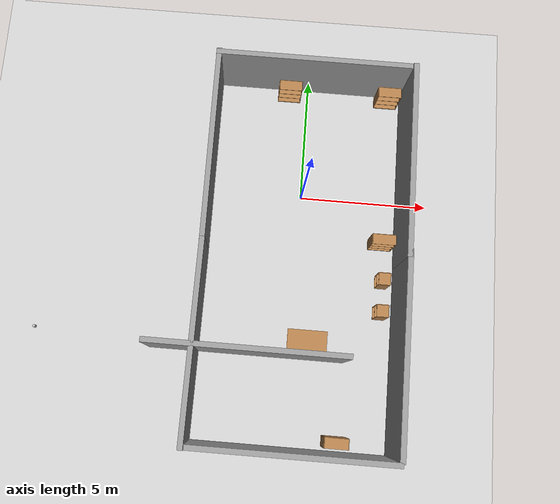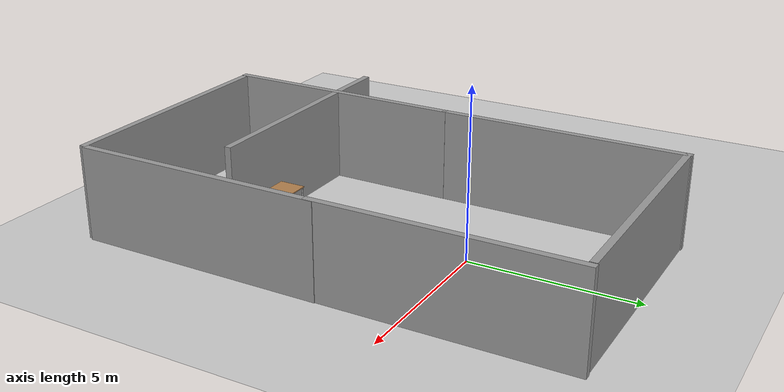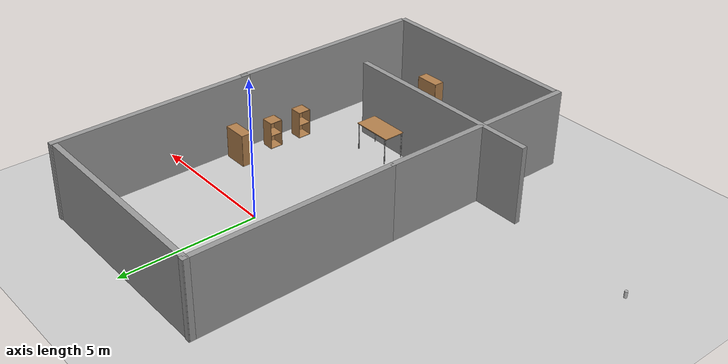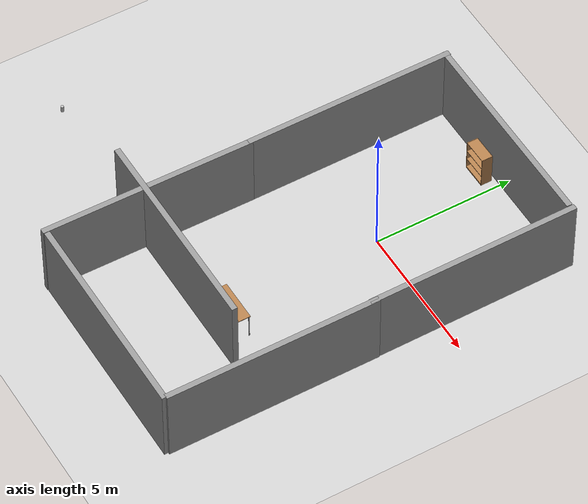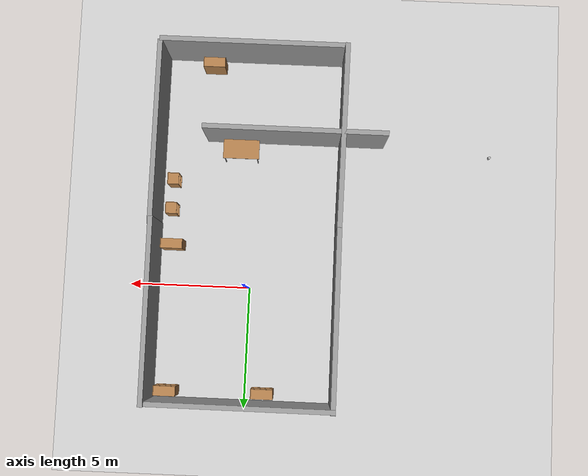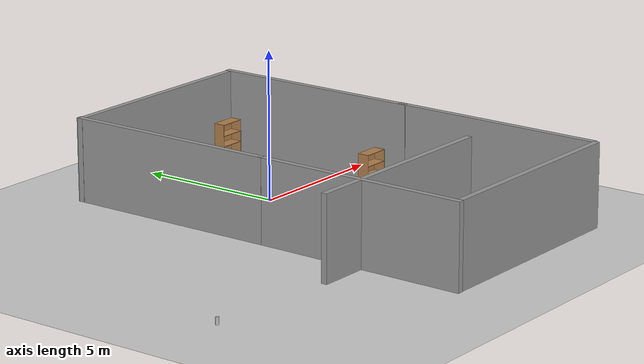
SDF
<sdf version="1.7">
 <world name="default">
  <light name="sun" type="directional">
   <pose>0 0 10 0 -0 0</pose>
   <diffuse>0.8 0.8 0.8 1</diffuse>
   <specular>0.2 0.2 0.2 1</specular>
   <attenuation>
    <range>1000</range>
    <constant>0.9</constant>
    <linear>0.01</linear>
    <quadratic>0.001</quadratic>
   </attenuation>
   <direction>-0.5 0.1 -0.9</direction>
   <spot><inner_angle>0</inner_angle><outer_angle>0</outer_angle><falloff>0</falloff></spot>
  </light>
  <model name="ground_plane">
   <static>1</static>
   <link name="link">
    <collision name="collision">
     <geometry><plane><normal>0 0 1</normal><size>100 100</size></plane></geometry>
     <surface>
      <contact><collide_bitmask>65535</collide_bitmask></contact>
      <friction><ode><mu>100</mu><mu2>50</mu2></ode></friction>
     </surface>
    </collision>
    <visual name="visual">
     <cast_shadows>0</cast_shadows>
     <geometry><plane><normal>0 0 1</normal><size>100 100</size></plane></geometry>
     <material>
      <script><uri>file://media/materials/scripts/gazebo.material</uri><name>Gazebo/Grey</name></script>
     </material>
    </visual>
   </link>
  </model>
  <gravity>0 0 -9.8</gravity>
  <magnetic_field>6e-06 2.3e-05 -4.2e-05</magnetic_field>
  <atmosphere type="adiabatic"/>
  <physics type="ode">
   <max_step_size>0.001</max_step_size>
   <real_time_factor>1</real_time_factor>
   <real_time_update_rate>1000</real_time_update_rate>
  </physics>
  <scene><ambient>0.4 0.4 0.4 1</ambient><background>0.7 0.7 0.7 1</background><shadows>1</shadows></scene>
  <spherical_coordinates>
   <surface_model>EARTH_WGS84</surface_model>
   <latitude_deg>0</latitude_deg>
   <longitude_deg>0</longitude_deg>
   <elevation>0</elevation>
   <heading_deg>0</heading_deg>
  </spherical_coordinates>
  <model name="beer">
   <link name="link">
    <pose>0 0 0.115 0 -0 0</pose>
    <inertial>
     <mass>0.39</mass>
     <inertia><ixx>0.00058</ixx><ixy>0</ixy><ixz>0</ixz><iyy>0.00058</iyy><iyz>0</iyz><izz>0.00019</izz></inertia>
    </inertial>
    <collision name="collision">
     <geometry><cylinder><radius>0.055</radius><length>0.23</length></cylinder></geometry>
    </collision>
    <visual name="visual">
     <geometry><cylinder><radius>0.055</radius><length>0.23</length></cylinder></geometry>
     <material>
      <script>
       <uri>model://beer/materials/scripts</uri>
       <uri>model://beer/materials/textures</uri>
       <name>Beer/Diffuse</name>
      </script>
     </material>
    </visual>
   </link>
   <pose>-10 -6.00001 -2e-06 1e-06 -0 -0.000192</pose>
  </model>
  <model name="grey_wall_clone">
   <static>1</static>
   <link name="link">
    <pose>0 0 1.4 0 -0 0</pose>
    <collision name="collision"><geometry><box><size>7.5 0.2 2.8</size></box></geometry></collision>
    <visual name="visual">
     <cast_shadows>0</cast_shadows>
     <geometry><box><size>7.5 0.2 2.8</size></box></geometry>
     <material>
      <script>
       <uri>model://grey_wall/materials/scripts</uri>
       <uri>model://grey_wall/materials/textures</uri>
       <name>vrc/grey_wall</name>
      </script>
     </material>
    </visual>
   </link>
   <pose>3.90974 -6.0726 0 0 -0 1.5677</pose>
  </model>
  <model name="grey_wall_clone_1_clone">
   <static>1</static>
   <link name="link">
    <pose>0 0 1.4 0 -0 0</pose>
    <collision name="collision"><geometry><box><size>7.5 0.2 2.8</size></box></geometry></collision>
    <visual name="visual">
     <cast_shadows>0</cast_shadows>
     <geometry><box><size>7.5 0.2 2.8</size></box></geometry>
     <material>
      <script>
       <uri>model://grey_wall/materials/scripts</uri>
       <uri>model://grey_wall/materials/textures</uri>
       <name>vrc/grey_wall</name>
      </script>
     </material>
    </visual>
   </link>
   <pose>-3.6334 1.14454 0 0 0 -1.56868</pose>
  </model>
  <model name="grey_wall_clone_1_clone_1">
   <static>1</static>
   <link name="link">
    <pose>0 0 1.4 0 -0 0</pose>
    <collision name="collision"><geometry><box><size>7.5 0.2 2.8</size></box></geometry></collision>
    <visual name="visual">
     <cast_shadows>0</cast_shadows>
     <geometry><box><size>7.5 0.2 2.8</size></box></geometry>
     <material>
      <script>
       <uri>model://grey_wall/materials/scripts</uri>
       <uri>model://grey_wall/materials/textures</uri>
       <name>vrc/grey_wall</name>
      </script>
     </material>
    </visual>
   </link>
   <pose>-1.71296 -6.3433 0 0 -0 3.14015</pose>
  </model>
  <model name="grey_wall_clone_1_clone_2">
   <static>1</static>
   <link name="link">
    <pose>0 0 1.4 0 -0 0</pose>
    <collision name="collision"><geometry><box><size>7.5 0.2 2.8</size></box></geometry></collision>
    <visual name="visual">
     <cast_shadows>0</cast_shadows>
     <geometry><box><size>7.5 0.2 2.8</size></box></geometry>
     <material>
      <script>
       <uri>model://grey_wall/materials/scripts</uri>
       <uri>model://grey_wall/materials/textures</uri>
       <name>vrc/grey_wall</name>
      </script>
     </material>
    </visual>
   </link>
   <pose>3.89112 1.11938 0 0 0 -1.56868</pose>
  </model>
  <model name="grey_wall_clone_1_clone_4">
   <static>1</static>
   <link name="link">
    <pose>0 0 1.4 0 -0 0</pose>
    <collision name="collision"><geometry><box><size>7.5 0.2 2.8</size></box></geometry></collision>
    <visual name="visual">
     <cast_shadows>0</cast_shadows>
     <geometry><box><size>7.5 0.2 2.8</size></box></geometry>
     <material>
      <script>
       <uri>model://grey_wall/materials/scripts</uri>
       <uri>model://grey_wall/materials/textures</uri>
       <name>vrc/grey_wall</name>
      </script>
     </material>
    </visual>
   </link>
   <pose>0.177643 -9.86342 0 0 -0 0</pose>
  </model>
  <model name="grey_wall_clone_1_clone_2_clone">
   <static>1</static>
   <link name="link">
    <pose>0 0 1.4 0 -0 0</pose>
    <collision name="collision"><geometry><box><size>7.5 0.2 2.8</size></box></geometry></collision>
    <visual name="visual">
     <cast_shadows>0</cast_shadows>
     <geometry><box><size>7.5 0.2 2.8</size></box></geometry>
     <material>
      <script>
       <uri>model://grey_wall/materials/scripts</uri>
       <uri>model://grey_wall/materials/textures</uri>
       <name>vrc/grey_wall</name>
      </script>
     </material>
    </visual>
   </link>
   <pose>0.004843 4.75175 0 0 0 -0.003224</pose>
  </model>
  <model name="grey_wall_clone_1_clone_2_clone_clone">
   <static>1</static>
   <link name="link">
    <pose>0 0 1.4 0 -0 0</pose>
    <collision name="collision"><geometry><box><size>7.5 0.2 2.8</size></box></geometry></collision>
    <visual name="visual">
     <cast_shadows>0</cast_shadows>
     <geometry><box><size>7.5 0.2 2.8</size></box></geometry>
     <material>
      <script>
       <uri>model://grey_wall/materials/scripts</uri>
       <uri>model://grey_wall/materials/textures</uri>
       <name>vrc/grey_wall</name>
      </script>
     </material>
    </visual>
   </link>
   <pose>-3.6555 -6.22831 0 0 0 -1.57988</pose>
  </model>
  <model name="table">
   <static>1</static>
   <link name="link">
    <collision name="surface">
     <pose>0 0 1 0 -0 0</pose>
     <geometry><box><size>1.5 0.8 0.03</size></box></geometry>
     <surface><friction><ode><mu>0.6</mu><mu2>0.6</mu2></ode></friction></surface>
    </collision>
    <visual name="visual1">
     <pose>0 0 1 0 -0 0</pose>
     <geometry><box><size>1.5 0.8 0.03</size></box></geometry>
     <material>
      <script><uri>file://media/materials/scripts/gazebo.material</uri><name>Gazebo/Wood</name></script>
     </material>
    </visual>
    <collision name="front_left_leg">
     <pose>0.68 0.38 0.5 0 -0 0</pose>
     <geometry><cylinder><radius>0.02</radius><length>1</length></cylinder></geometry>
    </collision>
    <visual name="front_left_leg">
     <pose>0.68 0.38 0.5 0 -0 0</pose>
     <geometry><cylinder><radius>0.02</radius><length>1</length></cylinder></geometry>
     <material>
      <script><uri>file://media/materials/scripts/gazebo.material</uri><name>Gazebo/Grey</name></script>
     </material>
    </visual>
    <collision name="front_right_leg">
     <pose>0.68 -0.38 0.5 0 -0 0</pose>
     <geometry><cylinder><radius>0.02</radius><length>1</length></cylinder></geometry>
    </collision>
    <visual name="front_right_leg">
     <pose>0.68 -0.38 0.5 0 -0 0</pose>
     <geometry><cylinder><radius>0.02</radius><length>1</length></cylinder></geometry>
     <material>
      <script><uri>file://media/materials/scripts/gazebo.material</uri><name>Gazebo/Grey</name></script>
     </material>
    </visual>
    <collision name="back_right_leg">
     <pose>-0.68 -0.38 0.5 0 -0 0</pose>
     <geometry><cylinder><radius>0.02</radius><length>1</length></cylinder></geometry>
    </collision>
    <visual name="back_right_leg">
     <pose>-0.68 -0.38 0.5 0 -0 0</pose>
     <geometry><cylinder><radius>0.02</radius><length>1</length></cylinder></geometry>
     <material>
      <script><uri>file://media/materials/scripts/gazebo.material</uri><name>Gazebo/Grey</name></script>
     </material>
    </visual>
    <collision name="back_left_leg">
     <pose>-0.68 0.38 0.5 0 -0 0</pose>
     <geometry><cylinder><radius>0.02</radius><length>1</length></cylinder></geometry>
    </collision>
    <visual name="back_left_leg">
     <pose>-0.68 0.38 0.5 0 -0 0</pose>
     <geometry><cylinder><radius>0.02</radius><length>1</length></cylinder></geometry>
     <material>
      <script><uri>file://media/materials/scripts/gazebo.material</uri><name>Gazebo/Grey</name></script>
     </material>
    </visual>
   </link>
   <pose>0.537947 -5.78045 0 0 -0 0</pose>
  </model>
  <model name="cabinet">
   <static>1</static>
   <link name="cabinet_bottom_plate">
    <inertial>
     <pose>0 0 -1 0 -0 0</pose>
     <inertia><ixx>2.05</ixx><ixy>0</ixy><ixz>0</ixz><iyy>2.05</iyy><iyz>0</iyz><izz>2.05</izz></inertia>
     <mass>25</mass>
    </inertial>
    <collision name="cabinet_bottom_plate_geom">
     <pose>0 0 0.01 0 -0 0</pose>
     <geometry><box><size>0.45 0.45 0.02</size></box></geometry>
    </collision>
    <visual name="cabinet_bottom_plate_geom_visual">
     <pose>0 0 0.01 0 -0 0</pose>
     <geometry><box><size>0.45 0.45 0.02</size></box></geometry>
     <material>
      <script><uri>file://media/materials/scripts/gazebo.material</uri><name>Gazebo/Wood</name></script>
     </material>
    </visual>
    <collision name="cabinet_bottom_plate_geom_cabinet_back_plate">
     <pose>0.235 0 0.51 0 -0 0</pose>
     <geometry><box><size>0.02 0.45 1.02</size></box></geometry>
    </collision>
    <visual name="cabinet_bottom_plate_geom_cabinet_back_plate_visual">
     <pose>0.235 0 0.51 0 -0 0</pose>
     <geometry><box><size>0.02 0.45 1.02</size></box></geometry>
     <material>
      <script><uri>file://media/materials/scripts/gazebo.material</uri><name>Gazebo/Wood</name></script>
     </material>
    </visual>
    <collision name="cabinet_bottom_plate_geom_cabinet_left_plate">
     <pose>0 0.235 0.51 0 -0 0</pose>
     <geometry><box><size>0.45 0.02 1.02</size></box></geometry>
    </collision>
    <visual name="cabinet_bottom_plate_geom_cabinet_left_plate_visual">
     <pose>0 0.235 0.51 0 -0 0</pose>
     <geometry><box><size>0.45 0.02 1.02</size></box></geometry>
     <material>
      <script><uri>file://media/materials/scripts/gazebo.material</uri><name>Gazebo/Wood</name></script>
     </material>
    </visual>
    <collision name="cabinet_bottom_plate_geom_cabinet_middle_plate">
     <pose>0 0 0.51 0 -0 0</pose>
     <geometry><box><size>0.45 0.45 0.02</size></box></geometry>
    </collision>
    <visual name="cabinet_bottom_plate_geom_cabinet_middle_plate_visual">
     <pose>0 0 0.51 0 -0 0</pose>
     <geometry><box><size>0.45 0.45 0.02</size></box></geometry>
     <material>
      <script><uri>file://media/materials/scripts/gazebo.material</uri><name>Gazebo/Wood</name></script>
     </material>
    </visual>
    <collision name="cabinet_bottom_plate_geom_cabinet_right_plate">
     <pose>0 -0.235 0.51 0 -0 0</pose>
     <geometry><box><size>0.45 0.02 1.02</size></box></geometry>
    </collision>
    <visual name="cabinet_bottom_plate_geom_cabinet_right_plate_visual">
     <pose>0 -0.235 0.51 0 -0 0</pose>
     <geometry><box><size>0.45 0.02 1.02</size></box></geometry>
     <material>
      <script><uri>file://media/materials/scripts/gazebo.material</uri><name>Gazebo/Wood</name></script>
     </material>
    </visual>
    <collision name="cabinet_bottom_plate_geom_cabinet_top_plate">
     <pose>0 0 1.01 0 -0 0</pose>
     <geometry><box><size>0.45 0.45 0.02</size></box></geometry>
    </collision>
    <visual name="cabinet_bottom_plate_geom_cabinet_top_plate_visual">
     <pose>0 0 1.01 0 -0 0</pose>
     <geometry><box><size>0.45 0.45 0.02</size></box></geometry>
     <material>
      <script><uri>file://media/materials/scripts/gazebo.material</uri><name>Gazebo/Wood</name></script>
     </material>
    </visual>
   </link>
   <pose>3.34664 -3.1957 0 0 -0 0</pose>
  </model>
  <model name="cabinet_0">
   <static>1</static>
   <link name="cabinet_bottom_plate">
    <inertial>
     <pose>0 0 -1 0 -0 0</pose>
     <inertia><ixx>2.05</ixx><ixy>0</ixy><ixz>0</ixz><iyy>2.05</iyy><iyz>0</iyz><izz>2.05</izz></inertia>
     <mass>25</mass>
    </inertial>
    <collision name="cabinet_bottom_plate_geom">
     <pose>0 0 0.01 0 -0 0</pose>
     <geometry><box><size>0.45 0.45 0.02</size></box></geometry>
    </collision>
    <visual name="cabinet_bottom_plate_geom_visual">
     <pose>0 0 0.01 0 -0 0</pose>
     <geometry><box><size>0.45 0.45 0.02</size></box></geometry>
     <material>
      <script><uri>file://media/materials/scripts/gazebo.material</uri><name>Gazebo/Wood</name></script>
     </material>
    </visual>
    <collision name="cabinet_bottom_plate_geom_cabinet_back_plate">
     <pose>0.235 0 0.51 0 -0 0</pose>
     <geometry><box><size>0.02 0.45 1.02</size></box></geometry>
    </collision>
    <visual name="cabinet_bottom_plate_geom_cabinet_back_plate_visual">
     <pose>0.235 0 0.51 0 -0 0</pose>
     <geometry><box><size>0.02 0.45 1.02</size></box></geometry>
     <material>
      <script><uri>file://media/materials/scripts/gazebo.material</uri><name>Gazebo/Wood</name></script>
     </material>
    </visual>
    <collision name="cabinet_bottom_plate_geom_cabinet_left_plate">
     <pose>0 0.235 0.51 0 -0 0</pose>
     <geometry><box><size>0.45 0.02 1.02</size></box></geometry>
    </collision>
    <visual name="cabinet_bottom_plate_geom_cabinet_left_plate_visual">
     <pose>0 0.235 0.51 0 -0 0</pose>
     <geometry><box><size>0.45 0.02 1.02</size></box></geometry>
     <material>
      <script><uri>file://media/materials/scripts/gazebo.material</uri><name>Gazebo/Wood</name></script>
     </material>
    </visual>
    <collision name="cabinet_bottom_plate_geom_cabinet_middle_plate">
     <pose>0 0 0.51 0 -0 0</pose>
     <geometry><box><size>0.45 0.45 0.02</size></box></geometry>
    </collision>
    <visual name="cabinet_bottom_plate_geom_cabinet_middle_plate_visual">
     <pose>0 0 0.51 0 -0 0</pose>
     <geometry><box><size>0.45 0.45 0.02</size></box></geometry>
     <material>
      <script><uri>file://media/materials/scripts/gazebo.material</uri><name>Gazebo/Wood</name></script>
     </material>
    </visual>
    <collision name="cabinet_bottom_plate_geom_cabinet_right_plate">
     <pose>0 -0.235 0.51 0 -0 0</pose>
     <geometry><box><size>0.45 0.02 1.02</size></box></geometry>
    </collision>
    <visual name="cabinet_bottom_plate_geom_cabinet_right_plate_visual">
     <pose>0 -0.235 0.51 0 -0 0</pose>
     <geometry><box><size>0.45 0.02 1.02</size></box></geometry>
     <material>
      <script><uri>file://media/materials/scripts/gazebo.material</uri><name>Gazebo/Wood</name></script>
     </material>
    </visual>
    <collision name="cabinet_bottom_plate_geom_cabinet_top_plate">
     <pose>0 0 1.01 0 -0 0</pose>
     <geometry><box><size>0.45 0.45 0.02</size></box></geometry>
    </collision>
    <visual name="cabinet_bottom_plate_geom_cabinet_top_plate_visual">
     <pose>0 0 1.01 0 -0 0</pose>
     <geometry><box><size>0.45 0.45 0.02</size></box></geometry>
     <material>
      <script><uri>file://media/materials/scripts/gazebo.material</uri><name>Gazebo/Wood</name></script>
     </material>
    </visual>
   </link>
   <pose>3.31883 -4.42801 0 0 -0 0</pose>
  </model>
  <model name="bookshelf">
   <static>1</static>
   <link name="link">
    <inertial><mass>1</mass></inertial>
    <collision name="back">
     <pose>0 0.005 0.6 0 -0 0</pose>
     <geometry><box><size>0.9 0.01 1.2</size></box></geometry>
    </collision>
    <visual name="visual1">
     <pose>0 0.005 0.6 0 -0 0</pose>
     <geometry><box><size>0.9 0.01 1.2</size></box></geometry>
     <material>
      <script><uri>file://media/materials/scripts/gazebo.material</uri><name>Gazebo/Wood</name></script>
     </material>
    </visual>
    <collision name="left_side">
     <pose>0.45 -0.195 0.6 0 -0 0</pose>
     <geometry><box><size>0.02 0.4 1.2</size></box></geometry>
    </collision>
    <visual name="visual2">
     <pose>0.45 -0.195 0.6 0 -0 0</pose>
     <geometry><box><size>0.02 0.4 1.2</size></box></geometry>
     <material>
      <script><uri>file://media/materials/scripts/gazebo.material</uri><name>Gazebo/Wood</name></script>
     </material>
    </visual>
    <collision name="right_side">
     <pose>-0.45 -0.195 0.6 0 -0 0</pose>
     <geometry><box><size>0.02 0.4 1.2</size></box></geometry>
    </collision>
    <visual name="visual3">
     <pose>-0.45 -0.195 0.6 0 -0 0</pose>
     <geometry><box><size>0.02 0.4 1.2</size></box></geometry>
     <material>
      <script><uri>file://media/materials/scripts/gazebo.material</uri><name>Gazebo/Wood</name></script>
     </material>
    </visual>
    <collision name="bottom">
     <pose>0 -0.195 0.03 0 -0 0</pose>
     <geometry><box><size>0.88 0.4 0.06</size></box></geometry>
    </collision>
    <visual name="visual4">
     <pose>0 -0.195 0.03 0 -0 0</pose>
     <geometry><box><size>0.88 0.4 0.06</size></box></geometry>
     <material>
      <script><uri>file://media/materials/scripts/gazebo.material</uri><name>Gazebo/Wood</name></script>
     </material>
    </visual>
    <collision name="top">
     <pose>0 -0.195 1.19 0 -0 0</pose>
     <geometry><box><size>0.88 0.4 0.02</size></box></geometry>
    </collision>
    <visual name="visual5">
     <pose>0 -0.195 1.19 0 -0 0</pose>
     <geometry><box><size>0.88 0.4 0.02</size></box></geometry>
     <material>
      <script><uri>file://media/materials/scripts/gazebo.material</uri><name>Gazebo/Wood</name></script>
     </material>
    </visual>
    <collision name="low_shelf">
     <pose>0 -0.195 0.43 0 -0 0</pose>
     <geometry><box><size>0.88 0.4 0.02</size></box></geometry>
    </collision>
    <visual name="visual6">
     <pose>0 -0.195 0.43 0 -0 0</pose>
     <geometry><box><size>0.88 0.4 0.02</size></box></geometry>
     <material>
      <script><uri>file://media/materials/scripts/gazebo.material</uri><name>Gazebo/Wood</name></script>
     </material>
    </visual>
    <collision name="high_shelf">
     <pose>0 -0.195 0.8 0 -0 0</pose>
     <geometry><box><size>0.88 0.4 0.02</size></box></geometry>
    </collision>
    <visual name="visual7">
     <pose>0 -0.195 0.8 0 -0 0</pose>
     <geometry><box><size>0.88 0.4 0.02</size></box></geometry>
     <material>
      <script><uri>file://media/materials/scripts/gazebo.material</uri><name>Gazebo/Wood</name></script>
     </material>
    </visual>
   </link>
   <pose>3.23596 -1.50493 0 0 -0 0</pose>
  </model>
  <model name="bookshelf_clone">
   <static>1</static>
   <link name="link">
    <inertial><mass>1</mass></inertial>
    <collision name="back">
     <pose>0 0.005 0.6 0 -0 0</pose>
     <geometry><box><size>0.9 0.01 1.2</size></box></geometry>
    </collision>
    <visual name="visual1">
     <pose>0 0.005 0.6 0 -0 0</pose>
     <geometry><box><size>0.9 0.01 1.2</size></box></geometry>
     <material>
      <script><uri>file://media/materials/scripts/gazebo.material</uri><name>Gazebo/Wood</name></script>
     </material>
    </visual>
    <collision name="left_side">
     <pose>0.45 -0.195 0.6 0 -0 0</pose>
     <geometry><box><size>0.02 0.4 1.2</size></box></geometry>
    </collision>
    <visual name="visual2">
     <pose>0.45 -0.195 0.6 0 -0 0</pose>
     <geometry><box><size>0.02 0.4 1.2</size></box></geometry>
     <material>
      <script><uri>file://media/materials/scripts/gazebo.material</uri><name>Gazebo/Wood</name></script>
     </material>
    </visual>
    <collision name="right_side">
     <pose>-0.45 -0.195 0.6 0 -0 0</pose>
     <geometry><box><size>0.02 0.4 1.2</size></box></geometry>
    </collision>
    <visual name="visual3">
     <pose>-0.45 -0.195 0.6 0 -0 0</pose>
     <geometry><box><size>0.02 0.4 1.2</size></box></geometry>
     <material>
      <script><uri>file://media/materials/scripts/gazebo.material</uri><name>Gazebo/Wood</name></script>
     </material>
    </visual>
    <collision name="bottom">
     <pose>0 -0.195 0.03 0 -0 0</pose>
     <geometry><box><size>0.88 0.4 0.06</size></box></geometry>
    </collision>
    <visual name="visual4">
     <pose>0 -0.195 0.03 0 -0 0</pose>
     <geometry><box><size>0.88 0.4 0.06</size></box></geometry>
     <material>
      <script><uri>file://media/materials/scripts/gazebo.material</uri><name>Gazebo/Wood</name></script>
     </material>
    </visual>
    <collision name="top">
     <pose>0 -0.195 1.19 0 -0 0</pose>
     <geometry><box><size>0.88 0.4 0.02</size></box></geometry>
    </collision>
    <visual name="visual5">
     <pose>0 -0.195 1.19 0 -0 0</pose>
     <geometry><box><size>0.88 0.4 0.02</size></box></geometry>
     <material>
      <script><uri>file://media/materials/scripts/gazebo.material</uri><name>Gazebo/Wood</name></script>
     </material>
    </visual>
    <collision name="low_shelf">
     <pose>0 -0.195 0.43 0 -0 0</pose>
     <geometry><box><size>0.88 0.4 0.02</size></box></geometry>
    </collision>
    <visual name="visual6">
     <pose>0 -0.195 0.43 0 -0 0</pose>
     <geometry><box><size>0.88 0.4 0.02</size></box></geometry>
     <material>
      <script><uri>file://media/materials/scripts/gazebo.material</uri><name>Gazebo/Wood</name></script>
     </material>
    </visual>
    <collision name="high_shelf">
     <pose>0 -0.195 0.8 0 -0 0</pose>
     <geometry><box><size>0.88 0.4 0.02</size></box></geometry>
    </collision>
    <visual name="visual7">
     <pose>0 -0.195 0.8 0 -0 0</pose>
     <geometry><box><size>0.88 0.4 0.02</size></box></geometry>
     <material>
      <script><uri>file://media/materials/scripts/gazebo.material</uri><name>Gazebo/Wood</name></script>
     </material>
    </visual>
   </link>
   <pose>1.82662 -9.21579 0 0 -0 0</pose>
  </model>
  <model name="bookshelf_0">
   <static>1</static>
   <link name="link">
    <inertial><mass>1</mass></inertial>
    <collision name="back">
     <pose>0 0.005 0.6 0 -0 0</pose>
     <geometry><box><size>0.9 0.01 1.2</size></box></geometry>
    </collision>
    <visual name="visual1">
     <pose>0 0.005 0.6 0 -0 0</pose>
     <geometry><box><size>0.9 0.01 1.2</size></box></geometry>
     <material>
      <script><uri>file://media/materials/scripts/gazebo.material</uri><name>Gazebo/Wood</name></script>
     </material>
    </visual>
    <collision name="left_side">
     <pose>0.45 -0.195 0.6 0 -0 0</pose>
     <geometry><box><size>0.02 0.4 1.2</size></box></geometry>
    </collision>
    <visual name="visual2">
     <pose>0.45 -0.195 0.6 0 -0 0</pose>
     <geometry><box><size>0.02 0.4 1.2</size></box></geometry>
     <material>
      <script><uri>file://media/materials/scripts/gazebo.material</uri><name>Gazebo/Wood</name></script>
     </material>
    </visual>
    <collision name="right_side">
     <pose>-0.45 -0.195 0.6 0 -0 0</pose>
     <geometry><box><size>0.02 0.4 1.2</size></box></geometry>
    </collision>
    <visual name="visual3">
     <pose>-0.45 -0.195 0.6 0 -0 0</pose>
     <geometry><box><size>0.02 0.4 1.2</size></box></geometry>
     <material>
      <script><uri>file://media/materials/scripts/gazebo.material</uri><name>Gazebo/Wood</name></script>
     </material>
    </visual>
    <collision name="bottom">
     <pose>0 -0.195 0.03 0 -0 0</pose>
     <geometry><box><size>0.88 0.4 0.06</size></box></geometry>
    </collision>
    <visual name="visual4">
     <pose>0 -0.195 0.03 0 -0 0</pose>
     <geometry><box><size>0.88 0.4 0.06</size></box></geometry>
     <material>
      <script><uri>file://media/materials/scripts/gazebo.material</uri><name>Gazebo/Wood</name></script>
     </material>
    </visual>
    <collision name="top">
     <pose>0 -0.195 1.19 0 -0 0</pose>
     <geometry><box><size>0.88 0.4 0.02</size></box></geometry>
    </collision>
    <visual name="visual5">
     <pose>0 -0.195 1.19 0 -0 0</pose>
     <geometry><box><size>0.88 0.4 0.02</size></box></geometry>
     <material>
      <script><uri>file://media/materials/scripts/gazebo.material</uri><name>Gazebo/Wood</name></script>
     </material>
    </visual>
    <collision name="low_shelf">
     <pose>0 -0.195 0.43 0 -0 0</pose>
     <geometry><box><size>0.88 0.4 0.02</size></box></geometry>
    </collision>
    <visual name="visual6">
     <pose>0 -0.195 0.43 0 -0 0</pose>
     <geometry><box><size>0.88 0.4 0.02</size></box></geometry>
     <material>
      <script><uri>file://media/materials/scripts/gazebo.material</uri><name>Gazebo/Wood</name></script>
     </material>
    </visual>
    <collision name="high_shelf">
     <pose>0 -0.195 0.8 0 -0 0</pose>
     <geometry><box><size>0.88 0.4 0.02</size></box></geometry>
    </collision>
    <visual name="visual7">
     <pose>0 -0.195 0.8 0 -0 0</pose>
     <geometry><box><size>0.88 0.4 0.02</size></box></geometry>
     <material>
      <script><uri>file://media/materials/scripts/gazebo.material</uri><name>Gazebo/Wood</name></script>
     </material>
    </visual>
   </link>
   <pose>3.20371 4.53377 0 0 -0 0</pose>
  </model>
  <model name="bookshelf_1">
   <static>1</static>
   <link name="link">
    <inertial><mass>1</mass></inertial>
    <collision name="back">
     <pose>0 0.005 0.6 0 -0 0</pose>
     <geometry><box><size>0.9 0.01 1.2</size></box></geometry>
    </collision>
    <visual name="visual1">
     <pose>0 0.005 0.6 0 -0 0</pose>
     <geometry><box><size>0.9 0.01 1.2</size></box></geometry>
     <material>
      <script><uri>file://media/materials/scripts/gazebo.material</uri><name>Gazebo/Wood</name></script>
     </material>
    </visual>
    <collision name="left_side">
     <pose>0.45 -0.195 0.6 0 -0 0</pose>
     <geometry><box><size>0.02 0.4 1.2</size></box></geometry>
    </collision>
    <visual name="visual2">
     <pose>0.45 -0.195 0.6 0 -0 0</pose>
     <geometry><box><size>0.02 0.4 1.2</size></box></geometry>
     <material>
      <script><uri>file://media/materials/scripts/gazebo.material</uri><name>Gazebo/Wood</name></script>
     </material>
    </visual>
    <collision name="right_side">
     <pose>-0.45 -0.195 0.6 0 -0 0</pose>
     <geometry><box><size>0.02 0.4 1.2</size></box></geometry>
    </collision>
    <visual name="visual3">
     <pose>-0.45 -0.195 0.6 0 -0 0</pose>
     <geometry><box><size>0.02 0.4 1.2</size></box></geometry>
     <material>
      <script><uri>file://media/materials/scripts/gazebo.material</uri><name>Gazebo/Wood</name></script>
     </material>
    </visual>
    <collision name="bottom">
     <pose>0 -0.195 0.03 0 -0 0</pose>
     <geometry><box><size>0.88 0.4 0.06</size></box></geometry>
    </collision>
    <visual name="visual4">
     <pose>0 -0.195 0.03 0 -0 0</pose>
     <geometry><box><size>0.88 0.4 0.06</size></box></geometry>
     <material>
      <script><uri>file://media/materials/scripts/gazebo.material</uri><name>Gazebo/Wood</name></script>
     </material>
    </visual>
    <collision name="top">
     <pose>0 -0.195 1.19 0 -0 0</pose>
     <geometry><box><size>0.88 0.4 0.02</size></box></geometry>
    </collision>
    <visual name="visual5">
     <pose>0 -0.195 1.19 0 -0 0</pose>
     <geometry><box><size>0.88 0.4 0.02</size></box></geometry>
     <material>
      <script><uri>file://media/materials/scripts/gazebo.material</uri><name>Gazebo/Wood</name></script>
     </material>
    </visual>
    <collision name="low_shelf">
     <pose>0 -0.195 0.43 0 -0 0</pose>
     <geometry><box><size>0.88 0.4 0.02</size></box></geometry>
    </collision>
    <visual name="visual6">
     <pose>0 -0.195 0.43 0 -0 0</pose>
     <geometry><box><size>0.88 0.4 0.02</size></box></geometry>
     <material>
      <script><uri>file://media/materials/scripts/gazebo.material</uri><name>Gazebo/Wood</name></script>
     </material>
    </visual>
    <collision name="high_shelf">
     <pose>0 -0.195 0.8 0 -0 0</pose>
     <geometry><box><size>0.88 0.4 0.02</size></box></geometry>
    </collision>
    <visual name="visual7">
     <pose>0 -0.195 0.8 0 -0 0</pose>
     <geometry><box><size>0.88 0.4 0.02</size></box></geometry>
     <material>
      <script><uri>file://media/materials/scripts/gazebo.material</uri><name>Gazebo/Wood</name></script>
     </material>
    </visual>
   </link>
   <pose>-0.764484 4.51307 0 0 -0 0</pose>
  </model>
 </world>
</sdf>
